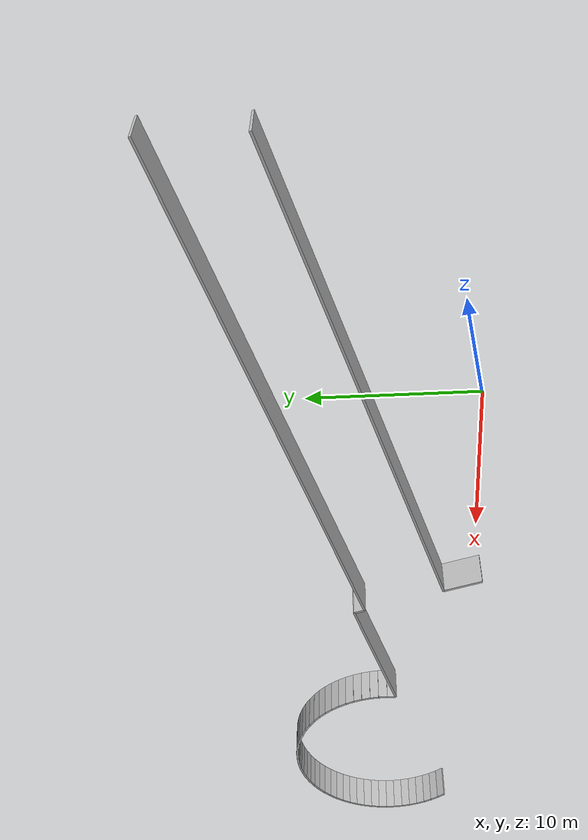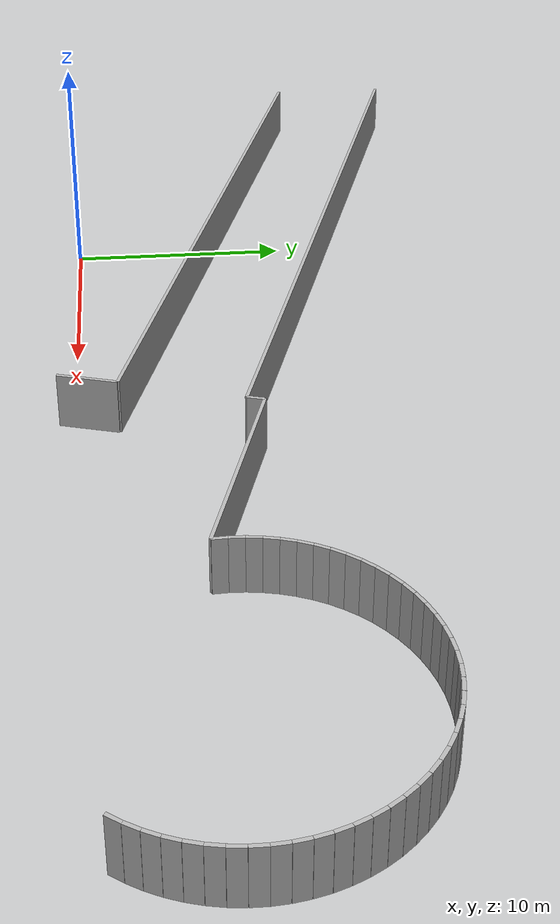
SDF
<?xml version="1.0" ?>
<sdf version="1.6">
  <model name="sps_1307">
    <pose frame="">0 0 0 0 -0 0</pose>
    <static>1</static>
    <self_collide>0</self_collide>
    <allow_auto_disable>0</allow_auto_disable>
    <link name="Wall18">
      <kinematic>0</kinematic>
      <gravity>1</gravity>
      <self_collide>0</self_collide>
      <collision name="collision">
        <geometry>
          <box>
            <size>0.750779 0.15 2.5</size>
          </box>
        </geometry>
        <pose frame="">0 0 0 0 -0 0</pose>
      </collision>
      <visual name="visual">
        <geometry>
          <box>
            <size>0.750779 0.15 2.5</size>
          </box>
        </geometry>
        <pose frame="">0 0 0 0 -0 0</pose>
        <cast_shadows>1</cast_shadows>
        <transparency>0.0</transparency>
      </visual>
      <pose frame="">17.673 7.51549 1.25 0 -0 1.29894</pose>
    </link>
    <link name="Wall277">
      <kinematic>0</kinematic>
      <gravity>1</gravity>
      <self_collide>0</self_collide>
      <collision name="collision">
        <geometry>
          <box>
            <size>2.64986 0.15 2.5</size>
          </box>
        </geometry>
        <pose frame="">0 0 0 0 -0 0</pose>
      </collision>
      <visual name="visual">
        <geometry>
          <box>
            <size>2.64986 0.15 2.5</size>
          </box>
        </geometry>
        <pose frame="">0 0 0 0 -0 0</pose>
        <cast_shadows>1</cast_shadows>
        <transparency>0.0</transparency>
      </visual>
      <pose frame="">15.5798 0.626693 1.25 0 -0 1.28343</pose>
    </link>
    <link name="Wall278">
      <kinematic>0</kinematic>
      <gravity>1</gravity>
      <self_collide>0</self_collide>
      <collision name="collision">
        <geometry>
          <box>
            <size>32.9414 0.15 2.5</size>
          </box>
        </geometry>
        <pose frame="">0 0 0 0 -0 0</pose>
      </collision>
      <visual name="visual">
        <geometry>
          <box>
            <size>32.9414 0.15 2.5</size>
          </box>
        </geometry>
        <pose frame="">0 0 0 0 -0 0</pose>
        <cast_shadows>1</cast_shadows>
        <transparency>0.0</transparency>
      </visual>
      <pose frame="">0.212364 6.73922 1.25 0 -0 2.84321</pose>
    </link>
    <link name="Wall346">
      <kinematic>0</kinematic>
      <gravity>1</gravity>
      <self_collide>0</self_collide>
      <collision name="collision">
        <geometry>
          <box>
            <size>9.41379 0.15 2.5</size>
          </box>
        </geometry>
        <pose frame="">0 0 0 0 -0 0</pose>
      </collision>
      <visual name="visual">
        <geometry>
          <box>
            <size>9.41379 0.15 2.5</size>
          </box>
        </geometry>
        <pose frame="">0 0 0 0 -0 0</pose>
        <cast_shadows>1</cast_shadows>
        <transparency>0.0</transparency>
      </visual>
      <pose frame="">22.2803 6.51829 1.25 0 -0 2.84874</pose>
    </link>
    <link name="Wall601">
      <kinematic>0</kinematic>
      <gravity>1</gravity>
      <self_collide>0</self_collide>
      <collision name="collision">
        <geometry>
          <box>
            <size>34.6331 0.15 2.5</size>
          </box>
        </geometry>
        <pose frame="">0 0 0 0 -0 0</pose>
      </collision>
      <visual name="visual">
        <geometry>
          <box>
            <size>34.6331 0.15 2.5</size>
          </box>
        </geometry>
        <pose frame="">0 0 0 0 -0 0</pose>
        <cast_shadows>1</cast_shadows>
        <transparency>0.0</transparency>
      </visual>
      <pose frame="">1.02084 12.2446 1.25 0 0 -0.298385</pose>
    </link>
    <link name="Wall4769">
      <kinematic>0</kinematic>
      <gravity>1</gravity>
      <self_collide>0</self_collide>
      <collision name="collision">
        <geometry>
          <box>
            <size>0.623304 0.15 2.5</size>
          </box>
        </geometry>
        <pose frame="">0 0 0 0 -0 0</pose>
      </collision>
      <visual name="visual">
        <geometry>
          <box>
            <size>0.623304 0.15 2.5</size>
          </box>
        </geometry>
        <pose frame="">0 0 0 0 -0 0</pose>
        <cast_shadows>1</cast_shadows>
        <transparency>0.0</transparency>
      </visual>
      <pose frame="">36.0643 12.4152 1.25 0 0 -0.332465</pose>
    </link>
    <link name="Wall4770">
      <kinematic>0</kinematic>
      <gravity>1</gravity>
      <self_collide>0</self_collide>
      <collision name="collision">
        <geometry>
          <box>
            <size>0.62325 0.15 2.5</size>
          </box>
        </geometry>
        <pose frame="">0 0 0 0 -0 0</pose>
      </collision>
      <visual name="visual">
        <geometry>
          <box>
            <size>0.62325 0.15 2.5</size>
          </box>
        </geometry>
        <pose frame="">0 0 0 0 -0 0</pose>
        <cast_shadows>1</cast_shadows>
        <transparency>0.0</transparency>
      </visual>
      <pose frame="">36.6431 12.1857 1.25 0 0 -0.422599</pose>
    </link>
    <link name="Wall4771">
      <kinematic>0</kinematic>
      <gravity>1</gravity>
      <self_collide>0</self_collide>
      <collision name="collision">
        <geometry>
          <box>
            <size>0.623227 0.15 2.5</size>
          </box>
        </geometry>
        <pose frame="">0 0 0 0 -0 0</pose>
      </collision>
      <visual name="visual">
        <geometry>
          <box>
            <size>0.623227 0.15 2.5</size>
          </box>
        </geometry>
        <pose frame="">0 0 0 0 -0 0</pose>
        <cast_shadows>1</cast_shadows>
        <transparency>0.0</transparency>
      </visual>
      <pose frame="">37.199 11.9053 1.25 0 0 -0.511712</pose>
    </link>
    <link name="Wall4772">
      <kinematic>0</kinematic>
      <gravity>1</gravity>
      <self_collide>0</self_collide>
      <collision name="collision">
        <geometry>
          <box>
            <size>0.623388 0.15 2.5</size>
          </box>
        </geometry>
        <pose frame="">0 0 0 0 -0 0</pose>
      </collision>
      <visual name="visual">
        <geometry>
          <box>
            <size>0.623388 0.15 2.5</size>
          </box>
        </geometry>
        <pose frame="">0 0 0 0 -0 0</pose>
        <cast_shadows>1</cast_shadows>
        <transparency>0.0</transparency>
      </visual>
      <pose frame="">37.7276 11.5762 1.25 0 0 -0.602015</pose>
    </link>
    <link name="Wall4773">
      <kinematic>0</kinematic>
      <gravity>1</gravity>
      <self_collide>0</self_collide>
      <collision name="collision">
        <geometry>
          <box>
            <size>0.623144 0.15 2.5</size>
          </box>
        </geometry>
        <pose frame="">0 0 0 0 -0 0</pose>
      </collision>
      <visual name="visual">
        <geometry>
          <box>
            <size>0.623144 0.15 2.5</size>
          </box>
        </geometry>
        <pose frame="">0 0 0 0 -0 0</pose>
        <cast_shadows>1</cast_shadows>
        <transparency>0.0</transparency>
      </visual>
      <pose frame="">38.2244 11.201 1.25 0 0 -0.691553</pose>
    </link>
    <link name="Wall4774">
      <kinematic>0</kinematic>
      <gravity>1</gravity>
      <self_collide>0</self_collide>
      <collision name="collision">
        <geometry>
          <box>
            <size>0.623126 0.15 2.5</size>
          </box>
        </geometry>
        <pose frame="">0 0 0 0 -0 0</pose>
      </collision>
      <visual name="visual">
        <geometry>
          <box>
            <size>0.623126 0.15 2.5</size>
          </box>
        </geometry>
        <pose frame="">0 0 0 0 -0 0</pose>
        <cast_shadows>1</cast_shadows>
        <transparency>0.0</transparency>
      </visual>
      <pose frame="">38.6857 10.7829 1.25 0 0 -0.781242</pose>
    </link>
    <link name="Wall4775">
      <kinematic>0</kinematic>
      <gravity>1</gravity>
      <self_collide>0</self_collide>
      <collision name="collision">
        <geometry>
          <box>
            <size>0.623368 0.15 2.5</size>
          </box>
        </geometry>
        <pose frame="">0 0 0 0 -0 0</pose>
      </collision>
      <visual name="visual">
        <geometry>
          <box>
            <size>0.623368 0.15 2.5</size>
          </box>
        </geometry>
        <pose frame="">0 0 0 0 -0 0</pose>
        <cast_shadows>1</cast_shadows>
        <transparency>0.0</transparency>
      </visual>
      <pose frame="">39.1077 10.3251 1.25 0 0 -0.870868</pose>
    </link>
    <link name="Wall4776">
      <kinematic>0</kinematic>
      <gravity>1</gravity>
      <self_collide>0</self_collide>
      <collision name="collision">
        <geometry>
          <box>
            <size>0.62334 0.15 2.5</size>
          </box>
        </geometry>
        <pose frame="">0 0 0 0 -0 0</pose>
      </collision>
      <visual name="visual">
        <geometry>
          <box>
            <size>0.62334 0.15 2.5</size>
          </box>
        </geometry>
        <pose frame="">0 0 0 0 -0 0</pose>
        <cast_shadows>1</cast_shadows>
        <transparency>0.0</transparency>
      </visual>
      <pose frame="">39.4869 9.83119 1.25 0 0 -0.960985</pose>
    </link>
    <link name="Wall4777">
      <kinematic>0</kinematic>
      <gravity>1</gravity>
      <self_collide>0</self_collide>
      <collision name="collision">
        <geometry>
          <box>
            <size>0.623285 0.15 2.5</size>
          </box>
        </geometry>
        <pose frame="">0 0 0 0 -0 0</pose>
      </collision>
      <visual name="visual">
        <geometry>
          <box>
            <size>0.623285 0.15 2.5</size>
          </box>
        </geometry>
        <pose frame="">0 0 0 0 -0 0</pose>
        <cast_shadows>1</cast_shadows>
        <transparency>0.0</transparency>
      </visual>
      <pose frame="">39.8203 9.30528 1.25 0 0 -1.05058</pose>
    </link>
    <link name="Wall4778">
      <kinematic>0</kinematic>
      <gravity>1</gravity>
      <self_collide>0</self_collide>
      <collision name="collision">
        <geometry>
          <box>
            <size>0.623255 0.15 2.5</size>
          </box>
        </geometry>
        <pose frame="">0 0 0 0 -0 0</pose>
      </collision>
      <visual name="visual">
        <geometry>
          <box>
            <size>0.623255 0.15 2.5</size>
          </box>
        </geometry>
        <pose frame="">0 0 0 0 -0 0</pose>
        <cast_shadows>1</cast_shadows>
        <transparency>0.0</transparency>
      </visual>
      <pose frame="">40.1053 8.75169 1.25 0 0 -1.14013</pose>
    </link>
    <link name="Wall4779">
      <kinematic>0</kinematic>
      <gravity>1</gravity>
      <self_collide>0</self_collide>
      <collision name="collision">
        <geometry>
          <box>
            <size>0.623205 0.15 2.5</size>
          </box>
        </geometry>
        <pose frame="">0 0 0 0 -0 0</pose>
      </collision>
      <visual name="visual">
        <geometry>
          <box>
            <size>0.623205 0.15 2.5</size>
          </box>
        </geometry>
        <pose frame="">0 0 0 0 -0 0</pose>
        <cast_shadows>1</cast_shadows>
        <transparency>0.0</transparency>
      </visual>
      <pose frame="">40.3395 8.17482 1.25 0 0 -1.23018</pose>
    </link>
    <link name="Wall4780">
      <kinematic>0</kinematic>
      <gravity>1</gravity>
      <self_collide>0</self_collide>
      <collision name="collision">
        <geometry>
          <box>
            <size>0.622262 0.15 2.5</size>
          </box>
        </geometry>
        <pose frame="">0 0 0 0 -0 0</pose>
      </collision>
      <visual name="visual">
        <geometry>
          <box>
            <size>0.622262 0.15 2.5</size>
          </box>
        </geometry>
        <pose frame="">0 0 0 0 -0 0</pose>
        <cast_shadows>1</cast_shadows>
        <transparency>0.0</transparency>
      </visual>
      <pose frame="">40.5207 7.5797 1.25 0 0 -1.32032</pose>
    </link>
    <link name="Wall4781">
      <kinematic>0</kinematic>
      <gravity>1</gravity>
      <self_collide>0</self_collide>
      <collision name="collision">
        <geometry>
          <box>
            <size>0.622379 0.15 2.5</size>
          </box>
        </geometry>
        <pose frame="">0 0 0 0 -0 0</pose>
      </collision>
      <visual name="visual">
        <geometry>
          <box>
            <size>0.622379 0.15 2.5</size>
          </box>
        </geometry>
        <pose frame="">0 0 0 0 -0 0</pose>
        <cast_shadows>1</cast_shadows>
        <transparency>0.0</transparency>
      </visual>
      <pose frame="">40.6482 6.97118 1.25 0 0 -1.40847</pose>
    </link>
    <link name="Wall4782">
      <kinematic>0</kinematic>
      <gravity>1</gravity>
      <self_collide>0</self_collide>
      <collision name="collision">
        <geometry>
          <box>
            <size>0.622337 0.15 2.5</size>
          </box>
        </geometry>
        <pose frame="">0 0 0 0 -0 0</pose>
      </collision>
      <visual name="visual">
        <geometry>
          <box>
            <size>0.622337 0.15 2.5</size>
          </box>
        </geometry>
        <pose frame="">0 0 0 0 -0 0</pose>
        <cast_shadows>1</cast_shadows>
        <transparency>0.0</transparency>
      </visual>
      <pose frame="">40.7216 6.35377 1.25 0 0 -1.49619</pose>
    </link>
    <link name="Wall4783">
      <kinematic>0</kinematic>
      <gravity>1</gravity>
      <self_collide>0</self_collide>
      <collision name="collision">
        <geometry>
          <box>
            <size>0.622435 0.15 2.5</size>
          </box>
        </geometry>
        <pose frame="">0 0 0 0 -0 0</pose>
      </collision>
      <visual name="visual">
        <geometry>
          <box>
            <size>0.622435 0.15 2.5</size>
          </box>
        </geometry>
        <pose frame="">0 0 0 0 -0 0</pose>
        <cast_shadows>1</cast_shadows>
        <transparency>0.0</transparency>
      </visual>
      <pose frame="">40.7405 5.73228 1.25 0 0 -1.58462</pose>
    </link>
    <link name="Wall4784">
      <kinematic>0</kinematic>
      <gravity>1</gravity>
      <self_collide>0</self_collide>
      <collision name="collision">
        <geometry>
          <box>
            <size>0.622215 0.15 2.5</size>
          </box>
        </geometry>
        <pose frame="">0 0 0 0 -0 0</pose>
      </collision>
      <visual name="visual">
        <geometry>
          <box>
            <size>0.622215 0.15 2.5</size>
          </box>
        </geometry>
        <pose frame="">0 0 0 0 -0 0</pose>
        <cast_shadows>1</cast_shadows>
        <transparency>0.0</transparency>
      </visual>
      <pose frame="">40.7047 5.11159 1.25 0 0 -1.6722</pose>
    </link>
    <link name="Wall4785">
      <kinematic>0</kinematic>
      <gravity>1</gravity>
      <self_collide>0</self_collide>
      <collision name="collision">
        <geometry>
          <box>
            <size>0.622373 0.15 2.5</size>
          </box>
        </geometry>
        <pose frame="">0 0 0 0 -0 0</pose>
      </collision>
      <visual name="visual">
        <geometry>
          <box>
            <size>0.622373 0.15 2.5</size>
          </box>
        </geometry>
        <pose frame="">0 0 0 0 -0 0</pose>
        <cast_shadows>1</cast_shadows>
        <transparency>0.0</transparency>
      </visual>
      <pose frame="">40.6146 4.49647 1.25 0 0 -1.76052</pose>
    </link>
    <link name="Wall4786">
      <kinematic>0</kinematic>
      <gravity>1</gravity>
      <self_collide>0</self_collide>
      <collision name="collision">
        <geometry>
          <box>
            <size>0.622357 0.15 2.5</size>
          </box>
        </geometry>
        <pose frame="">0 0 0 0 -0 0</pose>
      </collision>
      <visual name="visual">
        <geometry>
          <box>
            <size>0.622357 0.15 2.5</size>
          </box>
        </geometry>
        <pose frame="">0 0 0 0 -0 0</pose>
        <cast_shadows>1</cast_shadows>
        <transparency>0.0</transparency>
      </visual>
      <pose frame="">40.4707 3.89159 1.25 0 0 -1.84815</pose>
    </link>
    <link name="Wall4787">
      <kinematic>0</kinematic>
      <gravity>1</gravity>
      <self_collide>0</self_collide>
      <collision name="collision">
        <geometry>
          <box>
            <size>0.622346 0.15 2.5</size>
          </box>
        </geometry>
        <pose frame="">0 0 0 0 -0 0</pose>
      </collision>
      <visual name="visual">
        <geometry>
          <box>
            <size>0.622346 0.15 2.5</size>
          </box>
        </geometry>
        <pose frame="">0 0 0 0 -0 0</pose>
        <cast_shadows>1</cast_shadows>
        <transparency>0.0</transparency>
      </visual>
      <pose frame="">40.2742 3.30171 1.25 0 0 -1.93657</pose>
    </link>
    <link name="Wall4788">
      <kinematic>0</kinematic>
      <gravity>1</gravity>
      <self_collide>0</self_collide>
      <collision name="collision">
        <geometry>
          <box>
            <size>0.622321 0.15 2.5</size>
          </box>
        </geometry>
        <pose frame="">0 0 0 0 -0 0</pose>
      </collision>
      <visual name="visual">
        <geometry>
          <box>
            <size>0.622321 0.15 2.5</size>
          </box>
        </geometry>
        <pose frame="">0 0 0 0 -0 0</pose>
        <cast_shadows>1</cast_shadows>
        <transparency>0.0</transparency>
      </visual>
      <pose frame="">40.0266 2.7314 1.25 0 0 -2.02418</pose>
    </link>
    <link name="Wall4789">
      <kinematic>0</kinematic>
      <gravity>1</gravity>
      <self_collide>0</self_collide>
      <collision name="collision">
        <geometry>
          <box>
            <size>0.622426 0.15 2.5</size>
          </box>
        </geometry>
        <pose frame="">0 0 0 0 -0 0</pose>
      </collision>
      <visual name="visual">
        <geometry>
          <box>
            <size>0.622426 0.15 2.5</size>
          </box>
        </geometry>
        <pose frame="">0 0 0 0 -0 0</pose>
        <cast_shadows>1</cast_shadows>
        <transparency>0.0</transparency>
      </visual>
      <pose frame="">39.7299 2.18498 1.25 0 0 -2.11228</pose>
    </link>
    <link name="Wall4790">
      <kinematic>0</kinematic>
      <gravity>1</gravity>
      <self_collide>0</self_collide>
      <collision name="collision">
        <geometry>
          <box>
            <size>0.622433 0.15 2.5</size>
          </box>
        </geometry>
        <pose frame="">0 0 0 0 -0 0</pose>
      </collision>
      <visual name="visual">
        <geometry>
          <box>
            <size>0.622433 0.15 2.5</size>
          </box>
        </geometry>
        <pose frame="">0 0 0 0 -0 0</pose>
        <cast_shadows>1</cast_shadows>
        <transparency>0.0</transparency>
      </visual>
      <pose frame="">39.3862 1.66679 1.25 0 0 -2.20067</pose>
    </link>
    <link name="Wall8242">
      <kinematic>0</kinematic>
      <gravity>1</gravity>
      <self_collide>0</self_collide>
      <collision name="collision">
        <geometry>
          <box>
            <size>0.622446 0.15 2.5</size>
          </box>
        </geometry>
        <pose frame="">0 0 0 0 -0 0</pose>
      </collision>
      <visual name="visual">
        <geometry>
          <box>
            <size>0.622446 0.15 2.5</size>
          </box>
        </geometry>
        <pose frame="">0 0 0 0 -0 0</pose>
        <cast_shadows>1</cast_shadows>
        <transparency>0.0</transparency>
      </visual>
      <pose frame="">26.7704 5.47029 1.25 0 -0 1.62348</pose>
    </link>
    <link name="Wall8243">
      <kinematic>0</kinematic>
      <gravity>1</gravity>
      <self_collide>0</self_collide>
      <collision name="collision">
        <geometry>
          <box>
            <size>0.622618 0.15 2.5</size>
          </box>
        </geometry>
        <pose frame="">0 0 0 0 -0 0</pose>
      </collision>
      <visual name="visual">
        <geometry>
          <box>
            <size>0.622618 0.15 2.5</size>
          </box>
        </geometry>
        <pose frame="">0 0 0 0 -0 0</pose>
        <cast_shadows>1</cast_shadows>
        <transparency>0.0</transparency>
      </visual>
      <pose frame="">26.7656 6.09218 1.25 0 -0 1.53383</pose>
    </link>
    <link name="Wall8244">
      <kinematic>0</kinematic>
      <gravity>1</gravity>
      <self_collide>0</self_collide>
      <collision name="collision">
        <geometry>
          <box>
            <size>0.622598 0.15 2.5</size>
          </box>
        </geometry>
        <pose frame="">0 0 0 0 -0 0</pose>
      </collision>
      <visual name="visual">
        <geometry>
          <box>
            <size>0.622598 0.15 2.5</size>
          </box>
        </geometry>
        <pose frame="">0 0 0 0 -0 0</pose>
        <cast_shadows>1</cast_shadows>
        <transparency>0.0</transparency>
      </visual>
      <pose frame="">26.8164 6.71208 1.25 0 -0 1.44419</pose>
    </link>
    <link name="Wall8245">
      <kinematic>0</kinematic>
      <gravity>1</gravity>
      <self_collide>0</self_collide>
      <collision name="collision">
        <geometry>
          <box>
            <size>0.622486 0.15 2.5</size>
          </box>
        </geometry>
        <pose frame="">0 0 0 0 -0 0</pose>
      </collision>
      <visual name="visual">
        <geometry>
          <box>
            <size>0.622486 0.15 2.5</size>
          </box>
        </geometry>
        <pose frame="">0 0 0 0 -0 0</pose>
        <cast_shadows>1</cast_shadows>
        <transparency>0.0</transparency>
      </visual>
      <pose frame="">26.9224 7.3249 1.25 0 -0 1.35488</pose>
    </link>
    <link name="Wall8246">
      <kinematic>0</kinematic>
      <gravity>1</gravity>
      <self_collide>0</self_collide>
      <collision name="collision">
        <geometry>
          <box>
            <size>0.622514 0.15 2.5</size>
          </box>
        </geometry>
        <pose frame="">0 0 0 0 -0 0</pose>
      </collision>
      <visual name="visual">
        <geometry>
          <box>
            <size>0.622514 0.15 2.5</size>
          </box>
        </geometry>
        <pose frame="">0 0 0 0 -0 0</pose>
        <cast_shadows>1</cast_shadows>
        <transparency>0.0</transparency>
      </visual>
      <pose frame="">27.0828 7.9257 1.25 0 -0 1.26464</pose>
    </link>
    <link name="Wall8247">
      <kinematic>0</kinematic>
      <gravity>1</gravity>
      <self_collide>0</self_collide>
      <collision name="collision">
        <geometry>
          <box>
            <size>0.62262 0.15 2.5</size>
          </box>
        </geometry>
        <pose frame="">0 0 0 0 -0 0</pose>
      </collision>
      <visual name="visual">
        <geometry>
          <box>
            <size>0.62262 0.15 2.5</size>
          </box>
        </geometry>
        <pose frame="">0 0 0 0 -0 0</pose>
        <cast_shadows>1</cast_shadows>
        <transparency>0.0</transparency>
      </visual>
      <pose frame="">27.2966 8.50978 1.25 0 -0 1.17542</pose>
    </link>
    <link name="Wall8248">
      <kinematic>0</kinematic>
      <gravity>1</gravity>
      <self_collide>0</self_collide>
      <collision name="collision">
        <geometry>
          <box>
            <size>0.62249 0.15 2.5</size>
          </box>
        </geometry>
        <pose frame="">0 0 0 0 -0 0</pose>
      </collision>
      <visual name="visual">
        <geometry>
          <box>
            <size>0.62249 0.15 2.5</size>
          </box>
        </geometry>
        <pose frame="">0 0 0 0 -0 0</pose>
        <cast_shadows>1</cast_shadows>
        <transparency>0.0</transparency>
      </visual>
      <pose frame="">27.5617 9.07237 1.25 0 -0 1.08544</pose>
    </link>
    <link name="Wall8249">
      <kinematic>0</kinematic>
      <gravity>1</gravity>
      <self_collide>0</self_collide>
      <collision name="collision">
        <geometry>
          <box>
            <size>0.622621 0.15 2.5</size>
          </box>
        </geometry>
        <pose frame="">0 0 0 0 -0 0</pose>
      </collision>
      <visual name="visual">
        <geometry>
          <box>
            <size>0.622621 0.15 2.5</size>
          </box>
        </geometry>
        <pose frame="">0 0 0 0 -0 0</pose>
        <cast_shadows>1</cast_shadows>
        <transparency>0.0</transparency>
      </visual>
      <pose frame="">27.8761 9.60899 1.25 0 -0 0.996225</pose>
    </link>
    <link name="Wall8250">
      <kinematic>0</kinematic>
      <gravity>1</gravity>
      <self_collide>0</self_collide>
      <collision name="collision">
        <geometry>
          <box>
            <size>0.622402 0.15 2.5</size>
          </box>
        </geometry>
        <pose frame="">0 0 0 0 -0 0</pose>
      </collision>
      <visual name="visual">
        <geometry>
          <box>
            <size>0.622402 0.15 2.5</size>
          </box>
        </geometry>
        <pose frame="">0 0 0 0 -0 0</pose>
        <cast_shadows>1</cast_shadows>
        <transparency>0.0</transparency>
      </visual>
      <pose frame="">28.2371 10.1153 1.25 0 -0 0.906347</pose>
    </link>
    <link name="Wall8251">
      <kinematic>0</kinematic>
      <gravity>1</gravity>
      <self_collide>0</self_collide>
      <collision name="collision">
        <geometry>
          <box>
            <size>0.622688 0.15 2.5</size>
          </box>
        </geometry>
        <pose frame="">0 0 0 0 -0 0</pose>
      </collision>
      <visual name="visual">
        <geometry>
          <box>
            <size>0.622688 0.15 2.5</size>
          </box>
        </geometry>
        <pose frame="">0 0 0 0 -0 0</pose>
        <cast_shadows>1</cast_shadows>
        <transparency>0.0</transparency>
      </visual>
      <pose frame="">28.6422 10.5872 1.25 0 -0 0.816523</pose>
    </link>
    <link name="Wall8252">
      <kinematic>0</kinematic>
      <gravity>1</gravity>
      <self_collide>0</self_collide>
      <collision name="collision">
        <geometry>
          <box>
            <size>0.622491 0.15 2.5</size>
          </box>
        </geometry>
        <pose frame="">0 0 0 0 -0 0</pose>
      </collision>
      <visual name="visual">
        <geometry>
          <box>
            <size>0.622491 0.15 2.5</size>
          </box>
        </geometry>
        <pose frame="">0 0 0 0 -0 0</pose>
        <cast_shadows>1</cast_shadows>
        <transparency>0.0</transparency>
      </visual>
      <pose frame="">29.0879 11.021 1.25 0 -0 0.727196</pose>
    </link>
    <link name="Wall8253">
      <kinematic>0</kinematic>
      <gravity>1</gravity>
      <self_collide>0</self_collide>
      <collision name="collision">
        <geometry>
          <box>
            <size>0.621609 0.15 2.5</size>
          </box>
        </geometry>
        <pose frame="">0 0 0 0 -0 0</pose>
      </collision>
      <visual name="visual">
        <geometry>
          <box>
            <size>0.621609 0.15 2.5</size>
          </box>
        </geometry>
        <pose frame="">0 0 0 0 -0 0</pose>
        <cast_shadows>1</cast_shadows>
        <transparency>0.0</transparency>
      </visual>
      <pose frame="">29.5704 11.4127 1.25 0 -0 0.636687</pose>
    </link>
    <link name="Wall8254">
      <kinematic>0</kinematic>
      <gravity>1</gravity>
      <self_collide>0</self_collide>
      <collision name="collision">
        <geometry>
          <box>
            <size>0.621736 0.15 2.5</size>
          </box>
        </geometry>
        <pose frame="">0 0 0 0 -0 0</pose>
      </collision>
      <visual name="visual">
        <geometry>
          <box>
            <size>0.621736 0.15 2.5</size>
          </box>
        </geometry>
        <pose frame="">0 0 0 0 -0 0</pose>
        <cast_shadows>1</cast_shadows>
        <transparency>0.0</transparency>
      </visual>
      <pose frame="">30.0855 11.7597 1.25 0 -0 0.548922</pose>
    </link>
    <link name="Wall8255">
      <kinematic>0</kinematic>
      <gravity>1</gravity>
      <self_collide>0</self_collide>
      <collision name="collision">
        <geometry>
          <box>
            <size>0.621609 0.15 2.5</size>
          </box>
        </geometry>
        <pose frame="">0 0 0 0 -0 0</pose>
      </collision>
      <visual name="visual">
        <geometry>
          <box>
            <size>0.621609 0.15 2.5</size>
          </box>
        </geometry>
        <pose frame="">0 0 0 0 -0 0</pose>
        <cast_shadows>1</cast_shadows>
        <transparency>0.0</transparency>
      </visual>
      <pose frame="">30.6291 12.0601 1.25 0 -0 0.460837</pose>
    </link>
    <link name="Wall8256">
      <kinematic>0</kinematic>
      <gravity>1</gravity>
      <self_collide>0</self_collide>
      <collision name="collision">
        <geometry>
          <box>
            <size>0.621559 0.15 2.5</size>
          </box>
        </geometry>
        <pose frame="">0 0 0 0 -0 0</pose>
      </collision>
      <visual name="visual">
        <geometry>
          <box>
            <size>0.621559 0.15 2.5</size>
          </box>
        </geometry>
        <pose frame="">0 0 0 0 -0 0</pose>
        <cast_shadows>1</cast_shadows>
        <transparency>0.0</transparency>
      </visual>
      <pose frame="">31.1968 12.3116 1.25 0 -0 0.373103</pose>
    </link>
    <link name="Wall8257">
      <kinematic>0</kinematic>
      <gravity>1</gravity>
      <self_collide>0</self_collide>
      <collision name="collision">
        <geometry>
          <box>
            <size>0.621575 0.15 2.5</size>
          </box>
        </geometry>
        <pose frame="">0 0 0 0 -0 0</pose>
      </collision>
      <visual name="visual">
        <geometry>
          <box>
            <size>0.621575 0.15 2.5</size>
          </box>
        </geometry>
        <pose frame="">0 0 0 0 -0 0</pose>
        <cast_shadows>1</cast_shadows>
        <transparency>0.0</transparency>
      </visual>
      <pose frame="">31.7844 12.5124 1.25 0 -0 0.285381</pose>
    </link>
    <link name="Wall8258">
      <kinematic>0</kinematic>
      <gravity>1</gravity>
      <self_collide>0</self_collide>
      <collision name="collision">
        <geometry>
          <box>
            <size>0.621673 0.15 2.5</size>
          </box>
        </geometry>
        <pose frame="">0 0 0 0 -0 0</pose>
      </collision>
      <visual name="visual">
        <geometry>
          <box>
            <size>0.621673 0.15 2.5</size>
          </box>
        </geometry>
        <pose frame="">0 0 0 0 -0 0</pose>
        <cast_shadows>1</cast_shadows>
        <transparency>0.0</transparency>
      </visual>
      <pose frame="">32.3875 12.6608 1.25 0 -0 0.197242</pose>
    </link>
    <link name="Wall8259">
      <kinematic>0</kinematic>
      <gravity>1</gravity>
      <self_collide>0</self_collide>
      <collision name="collision">
        <geometry>
          <box>
            <size>0.62169 0.15 2.5</size>
          </box>
        </geometry>
        <pose frame="">0 0 0 0 -0 0</pose>
      </collision>
      <visual name="visual">
        <geometry>
          <box>
            <size>0.62169 0.15 2.5</size>
          </box>
        </geometry>
        <pose frame="">0 0 0 0 -0 0</pose>
        <cast_shadows>1</cast_shadows>
        <transparency>0.0</transparency>
      </visual>
      <pose frame="">33.0013 12.7556 1.25 0 -0 0.109291</pose>
    </link>
    <link name="Wall8260">
      <kinematic>0</kinematic>
      <gravity>1</gravity>
      <self_collide>0</self_collide>
      <collision name="collision">
        <geometry>
          <box>
            <size>0.621543 0.15 2.5</size>
          </box>
        </geometry>
        <pose frame="">0 0 0 0 -0 0</pose>
      </collision>
      <visual name="visual">
        <geometry>
          <box>
            <size>0.621543 0.15 2.5</size>
          </box>
        </geometry>
        <pose frame="">0 0 0 0 -0 0</pose>
        <cast_shadows>1</cast_shadows>
        <transparency>0.0</transparency>
      </visual>
      <pose frame="">33.621 12.7962 1.25 0 -0 0.0215073</pose>
    </link>
    <link name="Wall8261">
      <kinematic>0</kinematic>
      <gravity>1</gravity>
      <self_collide>0</self_collide>
      <collision name="collision">
        <geometry>
          <box>
            <size>0.621557 0.15 2.5</size>
          </box>
        </geometry>
        <pose frame="">0 0 0 0 -0 0</pose>
      </collision>
      <visual name="visual">
        <geometry>
          <box>
            <size>0.621557 0.15 2.5</size>
          </box>
        </geometry>
        <pose frame="">0 0 0 0 -0 0</pose>
        <cast_shadows>1</cast_shadows>
        <transparency>0.0</transparency>
      </visual>
      <pose frame="">34.2418 12.7822 1.25 0 0 -0.066627</pose>
    </link>
    <link name="Wall8262">
      <kinematic>0</kinematic>
      <gravity>1</gravity>
      <self_collide>0</self_collide>
      <collision name="collision">
        <geometry>
          <box>
            <size>0.621803 0.15 2.5</size>
          </box>
        </geometry>
        <pose frame="">0 0 0 0 -0 0</pose>
      </collision>
      <visual name="visual">
        <geometry>
          <box>
            <size>0.621803 0.15 2.5</size>
          </box>
        </geometry>
        <pose frame="">0 0 0 0 -0 0</pose>
        <cast_shadows>1</cast_shadows>
        <transparency>0.0</transparency>
      </visual>
      <pose frame="">34.8591 12.7138 1.25 0 0 -0.15403</pose>
    </link>
    <link name="Wall8263">
      <kinematic>0</kinematic>
      <gravity>1</gravity>
      <self_collide>0</self_collide>
      <collision name="collision">
        <geometry>
          <box>
            <size>0.621559 0.15 2.5</size>
          </box>
        </geometry>
        <pose frame="">0 0 0 0 -0 0</pose>
      </collision>
      <visual name="visual">
        <geometry>
          <box>
            <size>0.621559 0.15 2.5</size>
          </box>
        </geometry>
        <pose frame="">0 0 0 0 -0 0</pose>
        <cast_shadows>1</cast_shadows>
        <transparency>0.0</transparency>
      </visual>
      <pose frame="">35.468 12.5915 1.25 0 0 -0.242359</pose>
    </link>
  </model>
</sdf>
